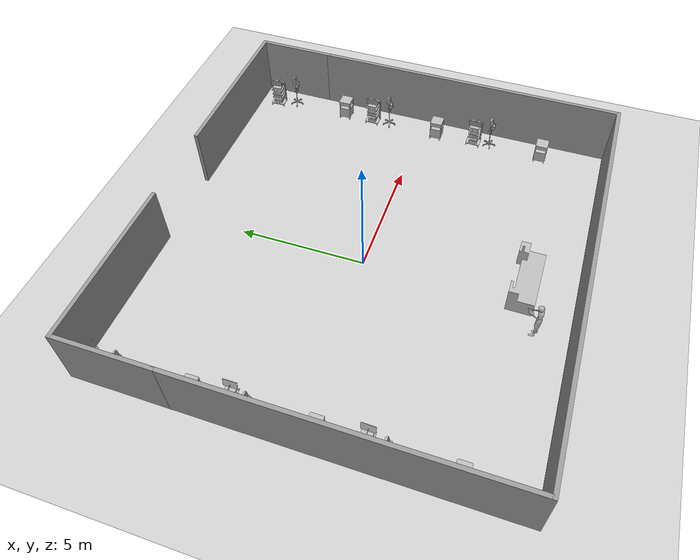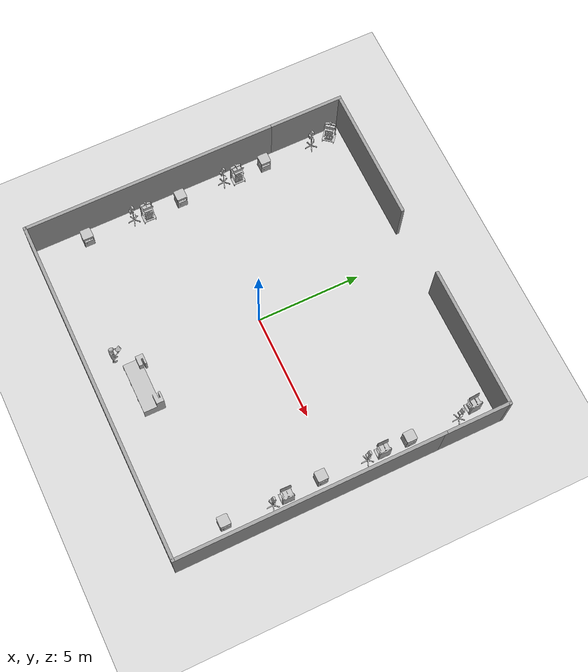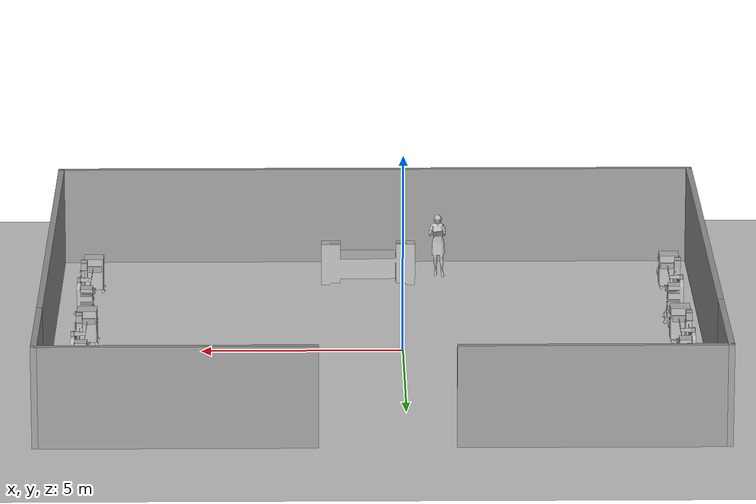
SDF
<sdf version="1.7">
 <world name="default">
  <light name="sun" type="directional">
   <pose>0 0 10 0 -0 0</pose>
   <diffuse>0.8 0.8 0.8 1</diffuse>
   <specular>0.2 0.2 0.2 1</specular>
   <attenuation>
    <range>1000</range>
    <constant>0.9</constant>
    <linear>0.01</linear>
    <quadratic>0.001</quadratic>
   </attenuation>
   <direction>-0.5 0.1 -0.9</direction>
   <spot><inner_angle>0</inner_angle><outer_angle>0</outer_angle><falloff>0</falloff></spot>
  </light>
  <model name="ground_plane">
   <static>1</static>
   <link name="link">
    <collision name="collision">
     <geometry><plane><normal>0 0 1</normal><size>100 100</size></plane></geometry>
     <surface><friction><ode><mu>100</mu><mu2>50</mu2></ode></friction></surface>
    </collision>
    <visual name="visual">
     <cast_shadows>0</cast_shadows>
     <geometry><plane><normal>0 0 1</normal><size>100 100</size></plane></geometry>
     <material>
      <script><uri>file://media/materials/scripts/gazebo.material</uri><name>Gazebo/Grey</name></script>
     </material>
    </visual>
   </link>
  </model>
  <gravity>0 0 -9.8</gravity>
  <magnetic_field>6e-06 2.3e-05 -4.2e-05</magnetic_field>
  <atmosphere type="adiabatic"/>
  <physics type="ode">
   <max_step_size>0.001</max_step_size>
   <real_time_factor>1</real_time_factor>
   <real_time_update_rate>1000</real_time_update_rate>
  </physics>
  <scene><ambient>0.4 0.4 0.4 1</ambient><background>0.7 0.7 0.7 1</background><shadows>1</shadows></scene>
  <audio><device>default</device></audio>
  <spherical_coordinates>
   <surface_model>EARTH_WGS84</surface_model>
   <latitude_deg>0</latitude_deg>
   <longitude_deg>0</longitude_deg>
   <elevation>0</elevation>
   <heading_deg>0</heading_deg>
  </spherical_coordinates>
  <model name="Hospitalworld3.world">
   <pose>0.599683 -0.158347 0 0 -0 0</pose>
   <link name="Wall_10">
    <collision name="Wall_10_Collision">
     <geometry><box><size>3.25 0.15 2.5</size></box></geometry>
     <pose>0 0 1.25 0 -0 0</pose>
    </collision>
    <visual name="Wall_10_Visual">
     <pose>0 0 1.25 0 -0 0</pose>
     <geometry><box><size>3.25 0.15 2.5</size></box></geometry>
     <material>
      <script><uri>file://media/materials/scripts/gazebo.material</uri><name>Gazebo/Grey</name></script>
      <ambient>1 1 1 1</ambient>
     </material>
     <meta><layer>0</layer></meta>
    </visual>
    <pose>8.175 6.3 0 0 -0 1.5708</pose>
   </link>
   <link name="Wall_11">
    <collision name="Wall_11_Collision">
     <geometry><box><size>6.75 0.15 2.5</size></box></geometry>
     <pose>0 0 1.25 0 -0 0</pose>
    </collision>
    <visual name="Wall_11_Visual">
     <pose>0 0 1.25 0 -0 0</pose>
     <geometry><box><size>6.75 0.15 2.5</size></box></geometry>
     <material>
      <script><uri>file://media/materials/scripts/gazebo.material</uri><name>Gazebo/Grey</name></script>
      <ambient>1 1 1 1</ambient>
     </material>
     <meta><layer>0</layer></meta>
    </visual>
    <pose>4.875 7.85 0 0 -0 3.14159</pose>
   </link>
   <link name="Wall_13">
    <collision name="Wall_13_Collision">
     <geometry><box><size>3.75 0.15 2.5</size></box></geometry>
     <pose>0 0 1.25 0 -0 0</pose>
    </collision>
    <visual name="Wall_13_Visual">
     <pose>0 0 1.25 0 -0 0</pose>
     <geometry><box><size>3.75 0.15 2.5</size></box></geometry>
     <material>
      <script><uri>file://media/materials/scripts/gazebo.material</uri><name>Gazebo/Grey</name></script>
      <ambient>1 1 1 1</ambient>
     </material>
     <meta><layer>0</layer></meta>
    </visual>
    <pose>-8.175 6.05 0 0 -0 1.5708</pose>
   </link>
   <link name="Wall_14">
    <collision name="Wall_14_Collision">
     <geometry><box><size>6.5 0.15 2.5</size></box></geometry>
     <pose>0 0 1.25 0 -0 0</pose>
    </collision>
    <visual name="Wall_14_Visual">
     <pose>0 0 1.25 0 -0 0</pose>
     <geometry><box><size>6.5 0.15 2.5</size></box></geometry>
     <material>
      <script><uri>file://media/materials/scripts/gazebo.material</uri><name>Gazebo/Grey</name></script>
      <ambient>1 1 1 1</ambient>
     </material>
     <meta><layer>0</layer></meta>
    </visual>
    <pose>-5 7.85 0 0 -0 0</pose>
   </link>
   <link name="Wall_6">
    <collision name="Wall_6_Collision">
     <geometry><box><size>12.25 0.15 2.5</size></box></geometry>
     <pose>0 0 1.25 0 -0 0</pose>
    </collision>
    <visual name="Wall_6_Visual">
     <pose>0 0 1.25 0 -0 0</pose>
     <geometry><box><size>12.25 0.15 2.5</size></box></geometry>
     <material>
      <script><uri>file://media/materials/scripts/gazebo.material</uri><name>Gazebo/Grey</name></script>
      <ambient>1 1 1 1</ambient>
     </material>
     <meta><layer>0</layer></meta>
    </visual>
    <pose>-8.175 -1.8 0 0 -0 -1.5708</pose>
   </link>
   <link name="Wall_7">
    <collision name="Wall_7_Collision">
     <geometry><box><size>16.5 0.15 2.5</size></box></geometry>
     <pose>0 0 1.25 0 -0 0</pose>
    </collision>
    <visual name="Wall_7_Visual">
     <pose>0 0 1.25 0 -0 0</pose>
     <geometry><box><size>16.5 0.15 2.5</size></box></geometry>
     <material>
      <script><uri>file://media/materials/scripts/gazebo.material</uri><name>Gazebo/Grey</name></script>
      <ambient>1 1 1 1</ambient>
     </material>
     <meta><layer>0</layer></meta>
    </visual>
    <pose>0 -7.85 0 0 -0 0</pose>
   </link>
   <link name="Wall_8">
    <collision name="Wall_8_Collision">
     <geometry><box><size>12.75 0.15 2.5</size></box></geometry>
     <pose>0 0 1.25 0 -0 0</pose>
    </collision>
    <visual name="Wall_8_Visual">
     <pose>0 0 1.25 0 -0 0</pose>
     <geometry><box><size>12.75 0.15 2.5</size></box></geometry>
     <material>
      <script><uri>file://media/materials/scripts/gazebo.material</uri><name>Gazebo/Grey</name></script>
      <ambient>1 1 1 1</ambient>
     </material>
     <meta><layer>0</layer></meta>
    </visual>
    <pose>8.175 -1.55 0 0 -0 1.5708</pose>
   </link>
   <static>1</static>
  </model>
  <model name="MainTable">
   <static>1</static>
   <link name="body">
    <visual name="visual">
     <geometry><mesh><uri>model://MainTable/meshes/MainTable.obj</uri></mesh></geometry>
    </visual>
    <collision name="collision">
     <geometry><mesh><uri>model://MainTable/meshes/MainTable.obj</uri></mesh></geometry>
    </collision>
   </link>
   <pose>0.809451 -6.01005 0 0 -0 3.13829</pose>
  </model>
  <model name="Nurse">
   <static>1</static>
   <link name="body">
    <visual name="visual"><geometry><mesh><uri>model://Nurse/meshes/Nurse.obj</uri></mesh></geometry></visual>
    <collision name="collision">
     <geometry><mesh><uri>model://Nurse/meshes/Nurse_Col.obj</uri></mesh></geometry>
    </collision>
   </link>
   <pose>-1.01955 -6.73744 0 0 -0 1.57985</pose>
  </model>
  <model name="BedsideTable_clone_0">
   <link name="body">
    <pose>0 0 0 0 0 -1.5708</pose>
    <visual name="visual">
     <geometry><mesh><uri>model://BedsideTable/meshes/BedsideTable.obj</uri></mesh></geometry>
    </visual>
    <collision name="collision">
     <geometry><mesh><uri>model://BedsideTable/meshes/BedsideTable_Col.obj</uri></mesh></geometry>
    </collision>
    <inertial>
     <inertia><ixx>1</ixx><ixy>0</ixy><ixz>0</ixz><iyy>1</iyy><iyz>0</iyz><izz>1</izz></inertia>
     <mass>1</mass>
    </inertial>
   </link>
   <pose>-6.94889 3.52459 0.00018 1e-06 -0 0</pose>
  </model>
  <model name="BedsideTable_clone_1">
   <link name="body">
    <pose>0 0 0 0 0 -1.5708</pose>
    <visual name="visual">
     <geometry><mesh><uri>model://BedsideTable/meshes/BedsideTable.obj</uri></mesh></geometry>
    </visual>
    <collision name="collision">
     <geometry><mesh><uri>model://BedsideTable/meshes/BedsideTable_Col.obj</uri></mesh></geometry>
    </collision>
    <inertial>
     <inertia><ixx>1</ixx><ixy>0</ixy><ixz>0</ixz><iyy>1</iyy><iyz>0</iyz><izz>1</izz></inertia>
     <mass>1</mass>
    </inertial>
   </link>
   <pose>7.85591 -5.34871 0.00018 0 -0 0</pose>
  </model>
  <model name="BedsideTable_clone_2">
   <link name="body">
    <pose>0 0 0 0 0 -1.5708</pose>
    <visual name="visual">
     <geometry><mesh><uri>model://BedsideTable/meshes/BedsideTable.obj</uri></mesh></geometry>
    </visual>
    <collision name="collision">
     <geometry><mesh><uri>model://BedsideTable/meshes/BedsideTable_Col.obj</uri></mesh></geometry>
    </collision>
    <inertial>
     <inertia><ixx>1</ixx><ixy>0</ixy><ixz>0</ixz><iyy>1</iyy><iyz>0</iyz><izz>1</izz></inertia>
     <mass>1</mass>
    </inertial>
   </link>
   <pose>7.85591 -0.732686 0.00018 0 -0 0</pose>
  </model>
  <model name="BedsideTable_clone_3">
   <link name="body">
    <pose>0 0 0 0 0 -1.5708</pose>
    <visual name="visual">
     <geometry><mesh><uri>model://BedsideTable/meshes/BedsideTable.obj</uri></mesh></geometry>
    </visual>
    <collision name="collision">
     <geometry><mesh><uri>model://BedsideTable/meshes/BedsideTable_Col.obj</uri></mesh></geometry>
    </collision>
    <inertial>
     <inertia><ixx>1</ixx><ixy>0</ixy><ixz>0</ixz><iyy>1</iyy><iyz>0</iyz><izz>1</izz></inertia>
     <mass>1</mass>
    </inertial>
   </link>
   <pose>7.92765 3.52459 0.00018 -1e-06 0 0</pose>
  </model>
  <model name="BedsideTable_clone">
   <link name="body">
    <pose>0 0 0 0 0 -1.5708</pose>
    <visual name="visual">
     <geometry><mesh><uri>model://BedsideTable/meshes/BedsideTable.obj</uri></mesh></geometry>
    </visual>
    <collision name="collision">
     <geometry><mesh><uri>model://BedsideTable/meshes/BedsideTable_Col.obj</uri></mesh></geometry>
    </collision>
    <inertial>
     <inertia><ixx>1</ixx><ixy>0</ixy><ixz>0</ixz><iyy>1</iyy><iyz>0</iyz><izz>1</izz></inertia>
     <mass>1</mass>
    </inertial>
   </link>
   <pose>-6.92494 -0.804429 0.00018 0 -0 0</pose>
  </model>
  <model name="BedsideTable_clone_clone">
   <link name="body">
    <pose>0 0 0 0 0 -1.5708</pose>
    <visual name="visual">
     <geometry><mesh><uri>model://BedsideTable/meshes/BedsideTable.obj</uri></mesh></geometry>
    </visual>
    <collision name="collision">
     <geometry><mesh><uri>model://BedsideTable/meshes/BedsideTable_Col.obj</uri></mesh></geometry>
    </collision>
    <inertial>
     <inertia><ixx>1</ixx><ixy>0</ixy><ixz>0</ixz><iyy>1</iyy><iyz>0</iyz><izz>1</izz></inertia>
     <mass>1</mass>
    </inertial>
   </link>
   <pose>-6.92494 -5.51613 0.00018 -1e-06 0 0</pose>
  </model>
  <model name="BloodPressureMonitor">
   <static>1</static>
   <link name="body">
    <visual name="visual">
     <geometry><mesh><uri>model://BloodPressureMonitor/meshes/BloodPressureMonitor.obj</uri></mesh></geometry>
    </visual>
    <collision name="collision">
     <geometry><mesh><uri>model://BloodPressureMonitor/meshes/BloodPressureMonitor_Col.obj</uri></mesh></geometry>
    </collision>
   </link>
   <pose>-6.9967 -3.17224 0 0 -0 0</pose>
  </model>
  <model name="BloodPressureMonitor_clone">
   <static>1</static>
   <link name="body">
    <visual name="visual">
     <geometry><mesh><uri>model://BloodPressureMonitor/meshes/BloodPressureMonitor.obj</uri></mesh></geometry>
    </visual>
    <collision name="collision">
     <geometry><mesh><uri>model://BloodPressureMonitor/meshes/BloodPressureMonitor_Col.obj</uri></mesh></geometry>
    </collision>
   </link>
   <pose>-6.99669 1.44379 0 0 -0 0</pose>
  </model>
  <model name="BloodPressureMonitor_clone_0">
   <static>1</static>
   <link name="body">
    <visual name="visual">
     <geometry><mesh><uri>model://BloodPressureMonitor/meshes/BloodPressureMonitor.obj</uri></mesh></geometry>
    </visual>
    <collision name="collision">
     <geometry><mesh><uri>model://BloodPressureMonitor/meshes/BloodPressureMonitor_Col.obj</uri></mesh></geometry>
    </collision>
   </link>
   <pose>-6.9967 6.0359 0 0 -0 0</pose>
  </model>
  <model name="BloodPressureMonitor_clone_1">
   <static>1</static>
   <link name="body">
    <visual name="visual">
     <geometry><mesh><uri>model://BloodPressureMonitor/meshes/BloodPressureMonitor.obj</uri></mesh></geometry>
    </visual>
    <collision name="collision">
     <geometry><mesh><uri>model://BloodPressureMonitor/meshes/BloodPressureMonitor_Col.obj</uri></mesh></geometry>
    </collision>
   </link>
   <pose>7.98677 5.99638 0 0 -0 0</pose>
  </model>
  <model name="BloodPressureMonitor_clone_2">
   <static>1</static>
   <link name="body">
    <visual name="visual">
     <geometry><mesh><uri>model://BloodPressureMonitor/meshes/BloodPressureMonitor.obj</uri></mesh></geometry>
    </visual>
    <collision name="collision">
     <geometry><mesh><uri>model://BloodPressureMonitor/meshes/BloodPressureMonitor_Col.obj</uri></mesh></geometry>
    </collision>
   </link>
   <pose>7.9628 1.49993 0 0 -0 0</pose>
  </model>
  <model name="BloodPressureMonitor_clone_3">
   <static>1</static>
   <link name="body">
    <visual name="visual">
     <geometry><mesh><uri>model://BloodPressureMonitor/meshes/BloodPressureMonitor.obj</uri></mesh></geometry>
    </visual>
    <collision name="collision">
     <geometry><mesh><uri>model://BloodPressureMonitor/meshes/BloodPressureMonitor_Col.obj</uri></mesh></geometry>
    </collision>
   </link>
   <pose>8.01074 -3.09217 0 0 -0 0</pose>
  </model>
  <model name="InstrumentCart1_clone">
   <static>1</static>
   <link name="body">
    <visual name="visual">
     <geometry><mesh><uri>model://InstrumentCart1/meshes/InstrumentCart1.obj</uri></mesh></geometry>
    </visual>
    <collision name="collision">
     <geometry><mesh><uri>model://InstrumentCart1/meshes/InstrumentCart1.obj</uri></mesh></geometry>
    </collision>
   </link>
   <pose>-6.88159 2.1086 0 0 -0 1.56896</pose>
  </model>
  <model name="InstrumentCart1_clone_0">
   <static>1</static>
   <link name="body">
    <visual name="visual">
     <geometry><mesh><uri>model://InstrumentCart1/meshes/InstrumentCart1.obj</uri></mesh></geometry>
    </visual>
    <collision name="collision">
     <geometry><mesh><uri>model://InstrumentCart1/meshes/InstrumentCart1.obj</uri></mesh></geometry>
    </collision>
   </link>
   <pose>-6.88159 -2.4938 0 0 -0 1.54722</pose>
  </model>
  <model name="InstrumentCart1_clone_1">
   <static>1</static>
   <link name="body">
    <visual name="visual">
     <geometry><mesh><uri>model://InstrumentCart1/meshes/InstrumentCart1.obj</uri></mesh></geometry>
    </visual>
    <collision name="collision">
     <geometry><mesh><uri>model://InstrumentCart1/meshes/InstrumentCart1.obj</uri></mesh></geometry>
    </collision>
   </link>
   <pose>-7.04796 7.01595 0 0 -0 0.902196</pose>
  </model>
  <model name="InstrumentCart1_clone_1_clone">
   <static>1</static>
   <link name="body">
    <visual name="visual">
     <geometry><mesh><uri>model://InstrumentCart1/meshes/InstrumentCart1.obj</uri></mesh></geometry>
    </visual>
    <collision name="collision">
     <geometry><mesh><uri>model://InstrumentCart1/meshes/InstrumentCart1.obj</uri></mesh></geometry>
    </collision>
   </link>
   <pose>7.77475 6.79462 0 0 0 -1.51056</pose>
  </model>
  <model name="InstrumentCart1_clone_1_clone_clone">
   <static>1</static>
   <link name="body">
    <visual name="visual">
     <geometry><mesh><uri>model://InstrumentCart1/meshes/InstrumentCart1.obj</uri></mesh></geometry>
    </visual>
    <collision name="collision">
     <geometry><mesh><uri>model://InstrumentCart1/meshes/InstrumentCart1.obj</uri></mesh></geometry>
    </collision>
   </link>
   <pose>7.91328 2.24742 0 0 0 -1.57908</pose>
  </model>
  <model name="InstrumentCart1_clone_1_clone_clone_0">
   <static>1</static>
   <link name="body">
    <visual name="visual">
     <geometry><mesh><uri>model://InstrumentCart1/meshes/InstrumentCart1.obj</uri></mesh></geometry>
    </visual>
    <collision name="collision">
     <geometry><mesh><uri>model://InstrumentCart1/meshes/InstrumentCart1.obj</uri></mesh></geometry>
    </collision>
   </link>
   <pose>7.94103 -2.41038 0 0 0 -1.59441</pose>
  </model>
 </world>
</sdf>
